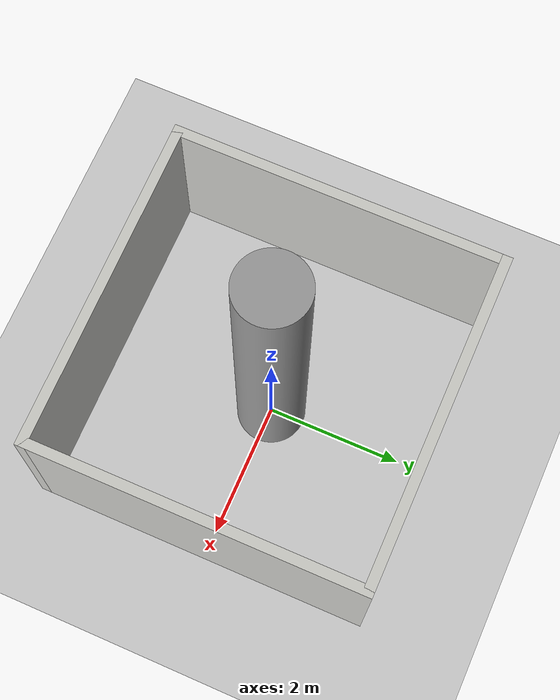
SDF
<sdf version="1.7">
 <world name="default">
  <plugin name="ros_interface_plugin" filename="librotors_gazebo_ros_interface_plugin.so"/>
  <light name="sun" type="directional">
   <pose>0 0 10 0 -0 0</pose>
   <diffuse>0.8 0.8 0.8 1</diffuse>
   <specular>0.2 0.2 0.2 1</specular>
   <attenuation>
    <range>1000</range>
    <constant>0.9</constant>
    <linear>0.01</linear>
    <quadratic>0.001</quadratic>
   </attenuation>
   <direction>-0.5 0.1 -0.9</direction>
   <spot><inner_angle>0</inner_angle><outer_angle>0</outer_angle><falloff>0</falloff></spot>
  </light>
  <model name="ground_plane">
   <static>1</static>
   <link name="link">
    <collision name="collision">
     <geometry><plane><normal>0 0 1</normal><size>100 100</size></plane></geometry>
     <surface>
      <contact><collide_bitmask>65535</collide_bitmask></contact>
      <friction><ode><mu>100</mu><mu2>50</mu2></ode></friction>
     </surface>
    </collision>
    <visual name="visual">
     <cast_shadows>0</cast_shadows>
     <geometry><plane><normal>0 0 1</normal><size>100 100</size></plane></geometry>
     <material>
      <script><uri>file://media/materials/scripts/gazebo.material</uri><name>Gazebo/Grey</name></script>
     </material>
    </visual>
   </link>
  </model>
  <gravity>0 0 -9.8</gravity>
  <magnetic_field>6e-06 2.3e-05 -4.2e-05</magnetic_field>
  <atmosphere type="adiabatic"/>
  <physics type="ode">
   <max_step_size>0.001</max_step_size>
   <real_time_factor>1</real_time_factor>
   <real_time_update_rate>1000</real_time_update_rate>
  </physics>
  <scene><ambient>0.4 0.4 0.4 1</ambient><background>0.7 0.7 0.7 1</background><shadows>1</shadows></scene>
  <spherical_coordinates>
   <surface_model>EARTH_WGS84</surface_model>
   <latitude_deg>0</latitude_deg>
   <longitude_deg>0</longitude_deg>
   <elevation>0</elevation>
   <heading_deg>0</heading_deg>
  </spherical_coordinates>
  <model name="walls">
   <pose>-0.075 -0.075 0 0 -0 0</pose>
   <link name="Wall_0">
    <collision name="Wall_0_Collision">
     <geometry><box><size>5 0.15 2.5</size></box></geometry>
     <pose>0 0 1.25 0 -0 0</pose>
    </collision>
    <visual name="Wall_0_Visual">
     <pose>0 0 1.25 0 -0 0</pose>
     <geometry><box><size>5 0.15 2.5</size></box></geometry>
     <material>
      <script><uri>file://media/materials/scripts/gazebo.material</uri><name>Gazebo/CeilingTiled</name></script>
      <ambient>1 1 1 1</ambient>
     </material>
     <meta><layer>0</layer></meta>
    </visual>
    <pose>-2.425 0 0 0 -0 1.5708</pose>
   </link>
   <link name="Wall_2">
    <collision name="Wall_2_Collision">
     <geometry><box><size>5 0.15 2.5</size></box></geometry>
     <pose>0 0 1.25 0 -0 0</pose>
    </collision>
    <visual name="Wall_2_Visual">
     <pose>0 0 1.25 0 -0 0</pose>
     <geometry><box><size>5 0.15 2.5</size></box></geometry>
     <material>
      <script><uri>file://media/materials/scripts/gazebo.material</uri><name>Gazebo/CeilingTiled</name></script>
      <ambient>1 1 1 1</ambient>
     </material>
     <meta><layer>0</layer></meta>
    </visual>
    <pose>0 2.425 0 0 -0 0</pose>
   </link>
   <link name="Wall_3">
    <collision name="Wall_3_Collision">
     <geometry><box><size>5 0.15 2.5</size></box></geometry>
     <pose>0 0 1.25 0 -0 0</pose>
    </collision>
    <visual name="Wall_3_Visual">
     <pose>0 0 1.25 0 -0 0</pose>
     <geometry><box><size>5 0.15 2.5</size></box></geometry>
     <material>
      <script><uri>file://media/materials/scripts/gazebo.material</uri><name>Gazebo/CeilingTiled</name></script>
      <ambient>1 1 1 1</ambient>
     </material>
     <meta><layer>0</layer></meta>
    </visual>
    <pose>2.425 0 0 0 -0 -1.5708</pose>
   </link>
   <link name="Wall_4">
    <collision name="Wall_4_Collision">
     <geometry><box><size>5 0.15 2.5</size></box></geometry>
     <pose>0 0 1.25 0 -0 0</pose>
    </collision>
    <visual name="Wall_4_Visual">
     <pose>0 0 1.25 0 -0 0</pose>
     <geometry><box><size>5 0.15 2.5</size></box></geometry>
     <material>
      <script><uri>file://media/materials/scripts/gazebo.material</uri><name>Gazebo/CeilingTiled</name></script>
      <ambient>1 1 1 1</ambient>
     </material>
     <meta><layer>0</layer></meta>
    </visual>
    <pose>0 -2.425 0 0 -0 3.14159</pose>
   </link>
   <static>1</static>
  </model>
  <model name="pipe">
   <link name="link_0">
    <inertial>
     <mass>1</mass>
     <inertia>
      <ixx>0.166667</ixx>
      <ixy>0</ixy>
      <ixz>0</ixz>
      <iyy>0.166667</iyy>
      <iyz>0</iyz>
      <izz>0.166667</izz>
     </inertia>
    </inertial>
    <visual name="visual">
     <geometry><mesh><uri>/home/andressa/prh_ws2/src/mesh/pipe.stl</uri><scale>1 1 1</scale></mesh></geometry>
     <material>
      <lighting>1</lighting>
      <script><uri>file://media/materials/scripts/gazebo.material</uri><name>Gazebo/Grey</name></script>
      <shader type="pixel"><normal_map>__default__</normal_map></shader>
      <ambient>0.3 0.3 0.3 1</ambient>
      <diffuse>0.7 0.7 0.7 1</diffuse>
      <specular>0.01 0.01 0.01 1</specular>
      <emissive>0 0 0 1</emissive>
     </material>
    </visual>
    <collision name="collision">
     <geometry><mesh><uri>/home/andressa/prh_ws2/src/mesh/pipe.stl</uri><scale>1 1 1</scale></mesh></geometry>
     <surface>
      <friction>
       <ode><mu>1</mu><mu2>1</mu2><fdir1>0 0 0</fdir1><slip1>0</slip1><slip2>0</slip2></ode>
       <torsional>
        <coefficient>1</coefficient>
        <patch_radius>0</patch_radius>
        <surface_radius>0</surface_radius>
        <use_patch_radius>1</use_patch_radius>
        <ode><slip>0</slip></ode>
       </torsional>
      </friction>
      <bounce><restitution_coefficient>0</restitution_coefficient><threshold>1e+06</threshold></bounce>
      <contact>
       <collide_without_contact>0</collide_without_contact>
       <collide_without_contact_bitmask>1</collide_without_contact_bitmask>
       <collide_bitmask>1</collide_bitmask>
       <ode>
        <soft_cfm>0</soft_cfm>
        <soft_erp>0.2</soft_erp>
        <kp>1e+13</kp>
        <kd>1</kd>
        <max_vel>0.01</max_vel>
        <min_depth>0</min_depth>
       </ode>
       <bullet>
        <split_impulse>1</split_impulse>
        <split_impulse_penetration_threshold>-0.01</split_impulse_penetration_threshold>
        <soft_cfm>0</soft_cfm>
        <soft_erp>0.2</soft_erp>
        <kp>1e+13</kp>
        <kd>1</kd>
       </bullet>
      </contact>
     </surface>
    </collision>
   </link>
   <static>0</static>
  </model>
  <plugin name="underwater_current_plugin" filename="libuuv_underwater_current_ros_plugin.so">
   <namespace>hydrodynamics</namespace>
   <constant_current>
    <topic>current_velocity</topic>
    <velocity><mean>0</mean><min>0</min><max>5</max><mu>0.0</mu><noiseAmp>0.0</noiseAmp></velocity>
    <horizontal_angle>
     <mean>0</mean>
     <min>-3.141592653589793238</min>
     <max>3.141592653589793238</max>
     <mu>0.0</mu>
     <noiseAmp>0.0</noiseAmp>
    </horizontal_angle>
    <vertical_angle>
     <mean>0</mean>
     <min>-3.141592653589793238</min>
     <max>3.141592653589793238</max>
     <mu>0.0</mu>
     <noiseAmp>0.0</noiseAmp>
    </vertical_angle>
   </constant_current>
  </plugin>
  <plugin name="sc_interface" filename="libuuv_sc_ros_interface_plugin.so"/>
 </world>
</sdf>
